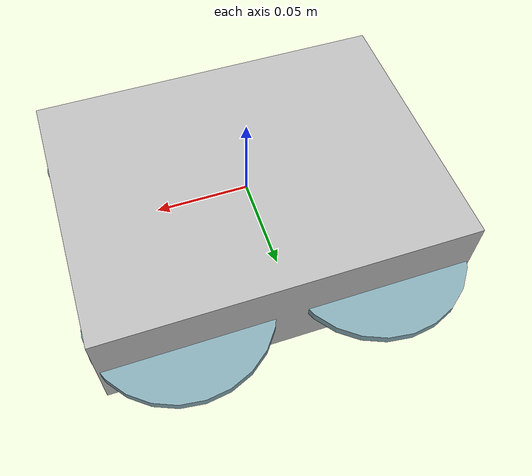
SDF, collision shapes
<?xml version="1.0" ?>
<sdf version="1.9">
  <model name="sunray150_assembled_motor_test">
    <pose>0 0 0 0 0 0</pose>
    <static>false</static>

    <link name="base_link">
      <inertial>
        <mass>0.980</mass>
        <inertia>
          <ixx>0.0085</ixx>
          <iyy>0.0085</iyy>
          <izz>0.012</izz>
          <ixy>0</ixy>
          <ixz>0</ixz>
          <iyz>0</iyz>
        </inertia>
      </inertial>
      <collision name="body_collision">
        <pose>0 0 -0.012 0 0 0</pose>
        <geometry>
          <box>
            <size>0.2 0.15 0.06</size>
          </box>
        </geometry>
      </collision>
      <visual name="assembled_textured_visual">
        <pose>0 0 0 1.57079632679 0 0</pose>
        <geometry>
          <mesh>
            <uri>model://sunray150_assembled/meshes/sunray150_dae_mid360_realistic_material_audit_gazebo_body_static.obj</uri>
          </mesh>
        </geometry>
      </visual>
      <gravity>1</gravity>
      <velocity_decay />
      <self_collide>0</self_collide>
      <!-- The accepted assembly mesh is split so visible propellers live on rotor
           links and can rotate with the motor joints in Gazebo. -->

      <!-- Sensors are disabled in this diagnostic copy so the probe isolates
           MulticopterMotorModel physics from GPU lidar/render load. -->
    </link>

    <link name="rotor_0">
      <pose>0.053745 -0.05374 -0.014052 0 0 0</pose>
      <inertial>
        <mass>0.005</mass>
        <inertia>
          <ixx>9.75e-07</ixx>
          <iyy>0.000173104</iyy>
          <izz>0.000174004</izz>
          <ixy>0</ixy>
          <ixz>0</ixz>
          <iyz>0</iyz>
        </inertia>
      </inertial>
      <collision name="rotor_0_collision">
        <geometry>
          <cylinder>
            <radius>0.05</radius>
            <length>0.005</length>
          </cylinder>
        </geometry>
      </collision>
      <visual name="rotor_0_propeller_visual">
        <geometry>
          <mesh>
            <uri>model://sunray150_assembled/meshes/sunray150_propeller_rotor_0_link_local.obj</uri>
          </mesh>
        </geometry>
        <material>
          <ambient>0.58 0.70 0.72 1</ambient>
          <diffuse>0.52 0.66 0.70 1</diffuse>
          <specular>0.08 0.09 0.09 1</specular>
        </material>
      </visual>
      <gravity>1</gravity>
      <velocity_decay />
      <self_collide>0</self_collide>
    </link>

    <link name="rotor_1">
      <pose>-0.053761 0.05376 -0.014052 0 0 0</pose>
      <inertial>
        <mass>0.005</mass>
        <inertia>
          <ixx>9.75e-07</ixx>
          <iyy>0.000173104</iyy>
          <izz>0.000174004</izz>
          <ixy>0</ixy>
          <ixz>0</ixz>
          <iyz>0</iyz>
        </inertia>
      </inertial>
      <collision name="rotor_1_collision">
        <geometry>
          <cylinder>
            <radius>0.05</radius>
            <length>0.005</length>
          </cylinder>
        </geometry>
      </collision>
      <visual name="rotor_1_propeller_visual">
        <geometry>
          <mesh>
            <uri>model://sunray150_assembled/meshes/sunray150_propeller_rotor_1_link_local.obj</uri>
          </mesh>
        </geometry>
        <material>
          <ambient>0.58 0.70 0.72 1</ambient>
          <diffuse>0.52 0.66 0.70 1</diffuse>
          <specular>0.08 0.09 0.09 1</specular>
        </material>
      </visual>
      <gravity>1</gravity>
      <velocity_decay />
      <self_collide>0</self_collide>
    </link>

    <link name="rotor_2">
      <pose>0.053746 0.053759 -0.014052 0 0 0</pose>
      <inertial>
        <mass>0.005</mass>
        <inertia>
          <ixx>9.75e-07</ixx>
          <iyy>0.000173104</iyy>
          <izz>0.000174004</izz>
          <ixy>0</ixy>
          <ixz>0</ixz>
          <iyz>0</iyz>
        </inertia>
      </inertial>
      <collision name="rotor_2_collision">
        <geometry>
          <cylinder>
            <radius>0.05</radius>
            <length>0.005</length>
          </cylinder>
        </geometry>
      </collision>
      <visual name="rotor_2_propeller_visual">
        <geometry>
          <mesh>
            <uri>model://sunray150_assembled/meshes/sunray150_propeller_rotor_2_link_local.obj</uri>
          </mesh>
        </geometry>
        <material>
          <ambient>0.58 0.70 0.72 1</ambient>
          <diffuse>0.52 0.66 0.70 1</diffuse>
          <specular>0.08 0.09 0.09 1</specular>
        </material>
      </visual>
      <gravity>1</gravity>
      <velocity_decay />
      <self_collide>0</self_collide>
    </link>

    <link name="rotor_3">
      <pose>-0.053761 -0.053739 -0.014052 0 0 0</pose>
      <inertial>
        <mass>0.005</mass>
        <inertia>
          <ixx>9.75e-07</ixx>
          <iyy>0.000173104</iyy>
          <izz>0.000174004</izz>
          <ixy>0</ixy>
          <ixz>0</ixz>
          <iyz>0</iyz>
        </inertia>
      </inertial>
      <collision name="rotor_3_collision">
        <geometry>
          <cylinder>
            <radius>0.05</radius>
            <length>0.005</length>
          </cylinder>
        </geometry>
      </collision>
      <visual name="rotor_3_propeller_visual">
        <geometry>
          <mesh>
            <uri>model://sunray150_assembled/meshes/sunray150_propeller_rotor_3_link_local.obj</uri>
          </mesh>
        </geometry>
        <material>
          <ambient>0.58 0.70 0.72 1</ambient>
          <diffuse>0.52 0.66 0.70 1</diffuse>
          <specular>0.08 0.09 0.09 1</specular>
        </material>
      </visual>
      <gravity>1</gravity>
      <velocity_decay />
      <self_collide>0</self_collide>
    </link>

    <joint name="rotor_0_joint" type="revolute">
      <parent>base_link</parent>
      <child>rotor_0</child>
      <axis>
        <xyz>0 0 1</xyz>
        <limit>
          <lower>-1e+16</lower>
          <upper>1e+16</upper>
        </limit>
        <dynamics>
          <spring_reference>0</spring_reference>
          <spring_stiffness>0</spring_stiffness>
        </dynamics>
        <use_parent_model_frame>1</use_parent_model_frame>
      </axis>
    </joint>
    <joint name="rotor_1_joint" type="revolute">
      <parent>base_link</parent>
      <child>rotor_1</child>
      <axis>
        <xyz>0 0 1</xyz>
        <limit>
          <lower>-1e+16</lower>
          <upper>1e+16</upper>
        </limit>
        <dynamics>
          <spring_reference>0</spring_reference>
          <spring_stiffness>0</spring_stiffness>
        </dynamics>
        <use_parent_model_frame>1</use_parent_model_frame>
      </axis>
    </joint>
    <joint name="rotor_2_joint" type="revolute">
      <parent>base_link</parent>
      <child>rotor_2</child>
      <axis>
        <xyz>0 0 1</xyz>
        <limit>
          <lower>-1e+16</lower>
          <upper>1e+16</upper>
        </limit>
        <dynamics>
          <spring_reference>0</spring_reference>
          <spring_stiffness>0</spring_stiffness>
        </dynamics>
        <use_parent_model_frame>1</use_parent_model_frame>
      </axis>
    </joint>
    <joint name="rotor_3_joint" type="revolute">
      <parent>base_link</parent>
      <child>rotor_3</child>
      <axis>
        <xyz>0 0 1</xyz>
        <limit>
          <lower>-1e+16</lower>
          <upper>1e+16</upper>
        </limit>
        <dynamics>
          <spring_reference>0</spring_reference>
          <spring_stiffness>0</spring_stiffness>
        </dynamics>
        <use_parent_model_frame>1</use_parent_model_frame>
      </axis>
    </joint>

    <plugin filename="ignition-gazebo-multicopter-motor-model-system" name="gz::sim::systems::MulticopterMotorModel">
      <robotNamespace>sunray150</robotNamespace>
      <jointName>rotor_0_joint</jointName>
      <linkName>rotor_0</linkName>
      <turningDirection>ccw</turningDirection>
      <timeConstantUp>0.0125</timeConstantUp>
      <timeConstantDown>0.025</timeConstantDown>
      <maxRotVelocity>1100.0</maxRotVelocity>
      <motorConstant>5.84e-06</motorConstant>
      <momentConstant>0.06</momentConstant>
      <commandSubTopic>gazebo/command/motor_speed</commandSubTopic>
      <motorNumber>0</motorNumber>
      <rotorDragCoefficient>0.000175</rotorDragCoefficient>
      <rollingMomentCoefficient>1e-06</rollingMomentCoefficient>
      <motorSpeedPubTopic>motor_speed/0</motorSpeedPubTopic>
      <rotorVelocitySlowdownSim>10</rotorVelocitySlowdownSim>
      <motorType>velocity</motorType>
    </plugin>
    <plugin filename="ignition-gazebo-multicopter-motor-model-system" name="gz::sim::systems::MulticopterMotorModel">
      <robotNamespace>sunray150</robotNamespace>
      <jointName>rotor_1_joint</jointName>
      <linkName>rotor_1</linkName>
      <turningDirection>ccw</turningDirection>
      <timeConstantUp>0.0125</timeConstantUp>
      <timeConstantDown>0.025</timeConstantDown>
      <maxRotVelocity>1100.0</maxRotVelocity>
      <motorConstant>5.84e-06</motorConstant>
      <momentConstant>0.06</momentConstant>
      <commandSubTopic>gazebo/command/motor_speed</commandSubTopic>
      <motorNumber>1</motorNumber>
      <rotorDragCoefficient>0.000175</rotorDragCoefficient>
      <rollingMomentCoefficient>1e-06</rollingMomentCoefficient>
      <motorSpeedPubTopic>motor_speed/1</motorSpeedPubTopic>
      <rotorVelocitySlowdownSim>10</rotorVelocitySlowdownSim>
      <motorType>velocity</motorType>
    </plugin>
    <plugin filename="ignition-gazebo-multicopter-motor-model-system" name="gz::sim::systems::MulticopterMotorModel">
      <robotNamespace>sunray150</robotNamespace>
      <jointName>rotor_2_joint</jointName>
      <linkName>rotor_2</linkName>
      <turningDirection>cw</turningDirection>
      <timeConstantUp>0.0125</timeConstantUp>
      <timeConstantDown>0.025</timeConstantDown>
      <maxRotVelocity>1100.0</maxRotVelocity>
      <motorConstant>5.84e-06</motorConstant>
      <momentConstant>0.06</momentConstant>
      <commandSubTopic>gazebo/command/motor_speed</commandSubTopic>
      <motorNumber>2</motorNumber>
      <rotorDragCoefficient>0.000175</rotorDragCoefficient>
      <rollingMomentCoefficient>1e-06</rollingMomentCoefficient>
      <motorSpeedPubTopic>motor_speed/2</motorSpeedPubTopic>
      <rotorVelocitySlowdownSim>10</rotorVelocitySlowdownSim>
      <motorType>velocity</motorType>
    </plugin>
    <plugin filename="ignition-gazebo-multicopter-motor-model-system" name="gz::sim::systems::MulticopterMotorModel">
      <robotNamespace>sunray150</robotNamespace>
      <jointName>rotor_3_joint</jointName>
      <linkName>rotor_3</linkName>
      <turningDirection>cw</turningDirection>
      <timeConstantUp>0.0125</timeConstantUp>
      <timeConstantDown>0.025</timeConstantDown>
      <maxRotVelocity>1100.0</maxRotVelocity>
      <motorConstant>5.84e-06</motorConstant>
      <momentConstant>0.06</momentConstant>
      <commandSubTopic>gazebo/command/motor_speed</commandSubTopic>
      <motorNumber>3</motorNumber>
      <rotorDragCoefficient>0.000175</rotorDragCoefficient>
      <rollingMomentCoefficient>1e-06</rollingMomentCoefficient>
      <motorSpeedPubTopic>motor_speed/3</motorSpeedPubTopic>
      <rotorVelocitySlowdownSim>10</rotorVelocitySlowdownSim>
      <motorType>velocity</motorType>
    </plugin>

    <plugin filename="ignition-gazebo-pose-publisher-system" name="gz::sim::systems::PosePublisher">
      <topic>/model/sunray150_assembled_motor_test/truth_pose</topic>
      <publish_model_pose>true</publish_model_pose>
      <publish_link_pose>false</publish_link_pose>
      <publish_sensor_pose>false</publish_sensor_pose>
      <publish_collision_pose>false</publish_collision_pose>
      <publish_visual_pose>false</publish_visual_pose>
      <publish_nested_model_pose>false</publish_nested_model_pose>
      <use_pose_vector_msg>false</use_pose_vector_msg>
      <update_frequency>50</update_frequency>
      <static_publisher>false</static_publisher>
    </plugin>
  </model>
</sdf>
